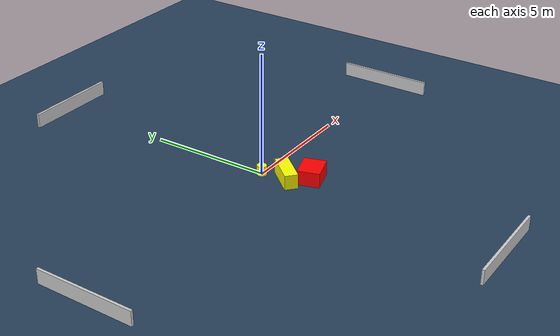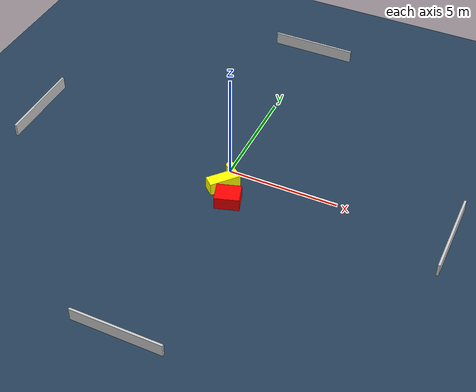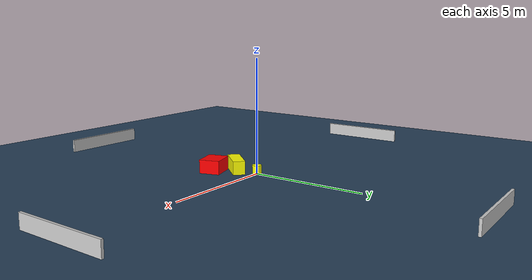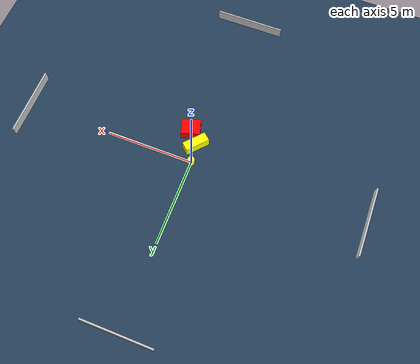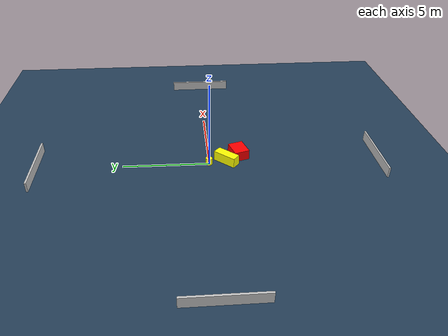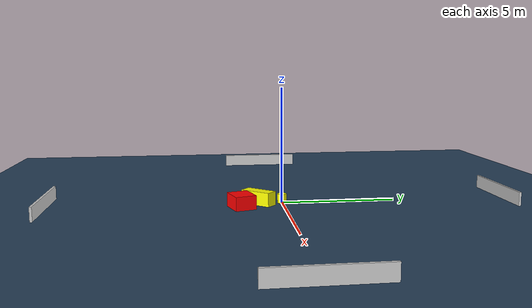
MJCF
<?xml version="1.0" ?>
<mujoco model="generated_environment">
  <option timestep="0.01" integrator="RK4" cone="elliptic"/>
  <default>
    <geom density="1"/>
  </default>
  <asset>
    <texture builtin="gradient" height="3072" name="skybox" rgb1="0.3 0.5 0.7" rgb2="0 0 0" type="skybox" width="512"/>
    <texture builtin="checker" height="300" name="groundplane" rgb1="0.2 0.3 0.4" rgb2="0.1 0.2 0.3" type="2d" width="300"/>
    <material name="groundplane" reflectance="0.2" texrepeat="5 5" texture="groundplane"/>
  </asset>
  <worldbody>
    <light dir="0 0 -1" directional="true" pos="0 0 1.5"/>
    <geom condim="3" friction="0.5 0.005 0.001" material="groundplane" name="floor" pos="0 0 0" size="0 0 0.05" type="plane"/>
    <body name="walls">
      <geom name="wall_1" condim="4" pos="-10.0 0.0 0.3" rgba="0.800000011920929 0.800000011920929 0.800000011920929 1.0" size="0.05 2.0 0.3" type="box"/>
      <geom name="wall_2" condim="4" pos="10.0 0.0 0.3" rgba="0.800000011920929 0.800000011920929 0.800000011920929 1.0" size="0.05 2.0 0.3" type="box"/>
      <geom name="wall_3" condim="4" pos="0.0 -10.0 0.3" rgba="0.800000011920929 0.800000011920929 0.800000011920929 1.0" size="2.0 0.05 0.3" type="box"/>
      <geom name="wall_4" condim="4" pos="0.0 10.0 0.3" rgba="0.800000011920929 0.800000011920929 0.800000011920929 1.0" size="2.0 0.05 0.3" type="box"/>
    </body>
    <body name="robot">
      <joint name="joint_x" type="slide" pos="0 0 0" axis="1 0 0"/>
      <joint name="joint_y" type="slide" pos="0 0 0" axis="0 1 0"/>
      <geom name="robot" type="cylinder" pos="0.0 0.0 0.2" size="0.2 0.2 0.0" mass="5.0" friction="1.0 0.005 0.0001" condim="4" rgba="1.0 1.0 0.0 1.0"/>
    </body>
    <body name="obstacle_1_movable">
      <geom name="obstacle_1_movable" condim="4" pos="0.13120519067576614 -1.0397388688231488 0.3" euler="0 0 138.79117274481598" friction="0.0 0.005 0.001" rgba="1.0 1.0 0.0 1.0" size="0.26799557870043467 0.7050078095804535 0.3" type="box" mass="0.1"/>
      <joint type="free"/>
    </body>
    <body name="obstacle_2_static">
      <geom name="obstacle_2_static" condim="4" pos="0.7269599454826872 -1.8133041344005796 0.3" euler="0 0 287.0526860381684" friction="0.0 0.005 0.001" rgba="1.0 0.0 0.0 1.0" size="0.4537916379902809 0.5486143496374576 0.3" type="box"/>
    </body>
  </worldbody>
  <actuator>
    <motor name="actuator_x" joint="joint_x" gear="1" ctrlrange="-1 1"/>
    <motor name="actuator_y" joint="joint_y" gear="1" ctrlrange="-1 1"/>
  </actuator>
</mujoco>
